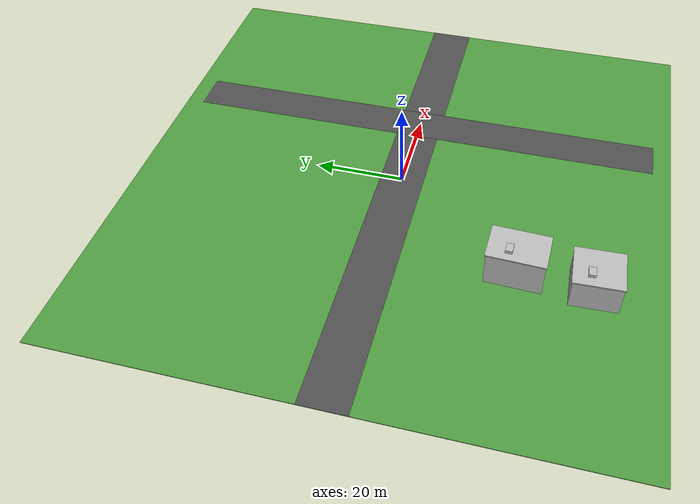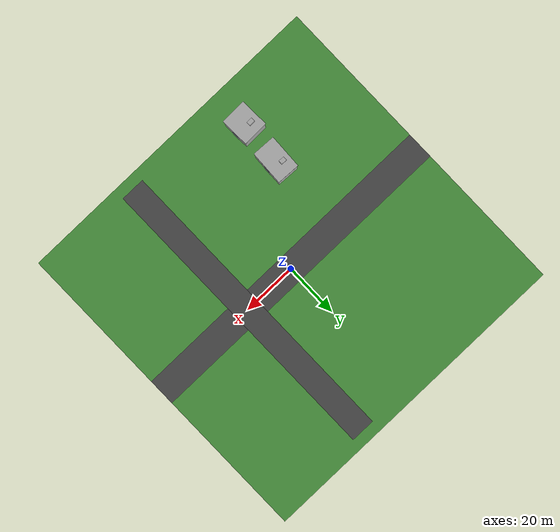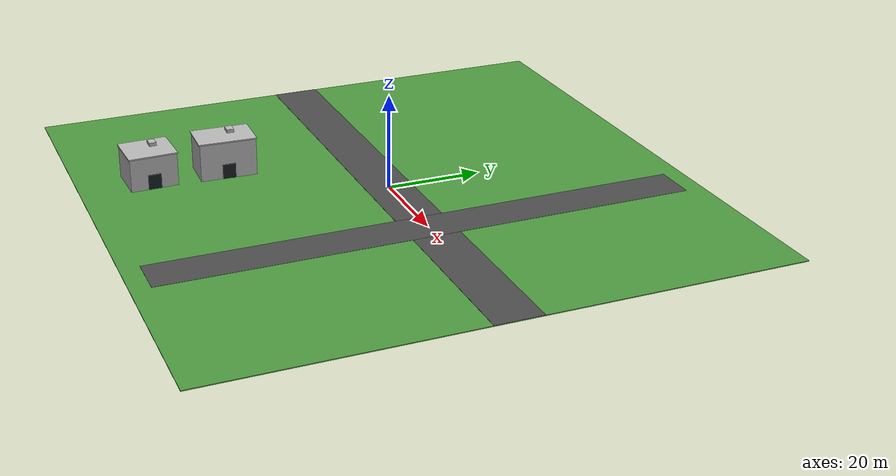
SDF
<sdf version="1.6">
 <world name="uav_complex_120m">
  <model name="terrain">
   <static>true</static>
   <link name="body">
    <pose>0 0 -0.1 0 0 0</pose>
    <collision name="collision">
     <geometry><box><size>120 120 0.2</size></box></geometry>
     <laser_retro>100</laser_retro>
     <surface><friction><ode><mu>1.0</mu><mu2>1.0</mu2></ode></friction></surface>
    </collision>
    <visual name="visual">
     <cast_shadows>false</cast_shadows>
     <geometry><box><size>120 120 0.2</size></box></geometry>
     <material>
      <script>
       <uri>model://uav_complex_scene/materials/scripts</uri>
       <uri>model://uav_complex_scene/materials/textures</uri>
       <name>UAVComplex/Grass</name>
      </script>
     </material>
    </visual>
   </link>
  </model>
  <model name="main_road">
   <static>true</static>
   <link name="body">
    <pose>0 0 0.018 0 0 0</pose>
    <visual name="visual">
     <cast_shadows>false</cast_shadows>
     <geometry><box><size>120 10 0.035</size></box></geometry>
     <material>
      <script>
       <uri>model://uav_complex_scene/materials/scripts</uri>
       <uri>model://uav_complex_scene/materials/textures</uri>
       <name>UAVComplex/Asphalt</name>
      </script>
     </material>
    </visual>
   </link>
  </model>
  <model name="cross_road">
   <static>true</static>
   <link name="body">
    <pose>20 0 0.021 0 0 0</pose>
    <visual name="visual">
     <cast_shadows>false</cast_shadows>
     <geometry><box><size>9 112 0.04</size></box></geometry>
     <material>
      <script>
       <uri>model://uav_complex_scene/materials/scripts</uri>
       <uri>model://uav_complex_scene/materials/textures</uri>
       <name>UAVComplex/Asphalt</name>
      </script>
     </material>
    </visual>
   </link>
  </model>
  <model name="urban_c">
   <static>true</static>
   <link name="shell">
    <pose>0 0 3.5 0 0 0</pose>
    <collision name="collision">
     <geometry><box><size>9 10 7</size></box></geometry>
     <laser_retro>100</laser_retro>
     <surface><friction><ode><mu>1.0</mu><mu2>1.0</mu2></ode></friction></surface>
    </collision>
    <visual name="visual">
     <geometry><box><size>9 10 7</size></box></geometry>
     <material>
      <script>
       <uri>model://uav_complex_scene/materials/scripts</uri>
       <uri>model://uav_complex_scene/materials/textures</uri>
       <name>UAVComplex/Brick</name>
      </script>
     </material>
    </visual>
   </link>
   <link name="roof">
    <pose>0 0 7.14 0 0 0</pose>
    <collision name="collision">
     <geometry><box><size>9.35 10.35 0.28</size></box></geometry>
     <laser_retro>100</laser_retro>
     <surface><friction><ode><mu>1.0</mu><mu2>1.0</mu2></ode></friction></surface>
    </collision>
    <visual name="visual">
     <geometry><box><size>9.35 10.35 0.28</size></box></geometry>
     <material>
      <script>
       <uri>model://uav_complex_scene/materials/scripts</uri>
       <uri>model://uav_complex_scene/materials/textures</uri>
       <name>UAVComplex/RustedSteel</name>
      </script>
     </material>
    </visual>
   </link>
   <link name="door">
    <pose>4.565 0 1.6 0 0 0</pose>
    <visual name="visual">
     <geometry><box><size>0.12 2.8 3.2</size></box></geometry>
     <material>
      <ambient>0.09 0.12 0.14 1</ambient>
      <diffuse>0.09 0.12 0.14 1</diffuse>
      <specular>0.08 0.08 0.08 1</specular>
     </material>
    </visual>
   </link>
   <link name="roof_unit">
    <pose>-1.62 1.4 7.59 0 0 0</pose>
    <collision name="collision">
     <geometry><box><size>2.1 1.5 0.9</size></box></geometry>
     <laser_retro>100</laser_retro>
     <surface><friction><ode><mu>1.0</mu><mu2>1.0</mu2></ode></friction></surface>
    </collision>
    <visual name="visual">
     <geometry><box><size>2.1 1.5 0.9</size></box></geometry>
     <material>
      <script>
       <uri>model://uav_complex_scene/materials/scripts</uri>
       <uri>model://uav_complex_scene/materials/textures</uri>
       <name>UAVComplex/RustedSteel</name>
      </script>
     </material>
    </visual>
   </link>
   <pose>-22 -45 0 0 0 0.03</pose>
  </model>
  <model name="urban_f">
   <static>true</static>
   <link name="shell">
    <pose>0 0 4 0 0 0</pose>
    <collision name="collision">
     <geometry><box><size>8 12 8</size></box></geometry>
     <laser_retro>100</laser_retro>
     <surface><friction><ode><mu>1.0</mu><mu2>1.0</mu2></ode></friction></surface>
    </collision>
    <visual name="visual">
     <geometry><box><size>8 12 8</size></box></geometry>
     <material>
      <script>
       <uri>model://uav_complex_scene/materials/scripts</uri>
       <uri>model://uav_complex_scene/materials/textures</uri>
       <name>UAVComplex/Brick</name>
      </script>
     </material>
    </visual>
   </link>
   <link name="roof">
    <pose>0 0 8.14 0 0 0</pose>
    <collision name="collision">
     <geometry><box><size>8.35 12.35 0.28</size></box></geometry>
     <laser_retro>100</laser_retro>
     <surface><friction><ode><mu>1.0</mu><mu2>1.0</mu2></ode></friction></surface>
    </collision>
    <visual name="visual">
     <geometry><box><size>8.35 12.35 0.28</size></box></geometry>
     <material>
      <script>
       <uri>model://uav_complex_scene/materials/scripts</uri>
       <uri>model://uav_complex_scene/materials/textures</uri>
       <name>UAVComplex/RustedSteel</name>
      </script>
     </material>
    </visual>
   </link>
   <link name="door">
    <pose>4.065 0 1.6 0 0 0</pose>
    <visual name="visual">
     <geometry><box><size>0.12 2.8 3.2</size></box></geometry>
     <material>
      <ambient>0.09 0.12 0.14 1</ambient>
      <diffuse>0.09 0.12 0.14 1</diffuse>
      <specular>0.08 0.08 0.08 1</specular>
     </material>
    </visual>
   </link>
   <link name="roof_unit">
    <pose>-1.44 1.68 8.59 0 0 0</pose>
    <collision name="collision">
     <geometry><box><size>2.1 1.5 0.9</size></box></geometry>
     <laser_retro>100</laser_retro>
     <surface><friction><ode><mu>1.0</mu><mu2>1.0</mu2></ode></friction></surface>
    </collision>
    <visual name="visual">
     <geometry><box><size>2.1 1.5 0.9</size></box></geometry>
     <material>
      <script>
       <uri>model://uav_complex_scene/materials/scripts</uri>
       <uri>model://uav_complex_scene/materials/textures</uri>
       <name>UAVComplex/RustedSteel</name>
      </script>
     </material>
    </visual>
   </link>
   <pose>-21 -29 0 0 0 -0.04</pose>
  </model>
 </world>
</sdf>
